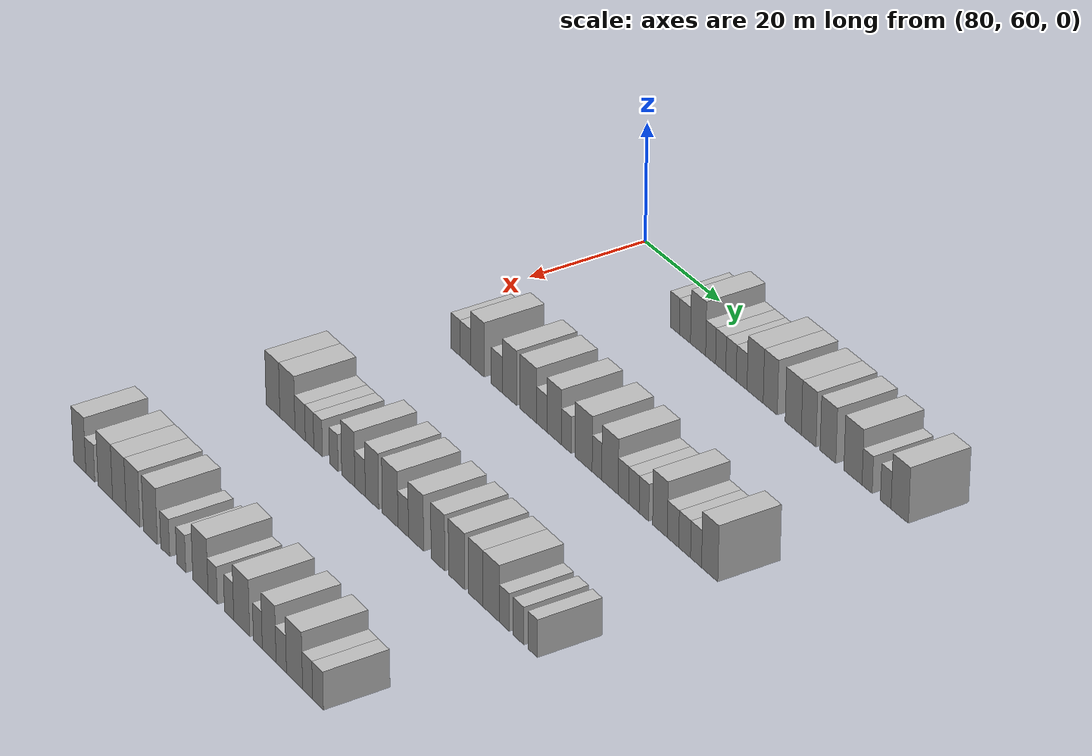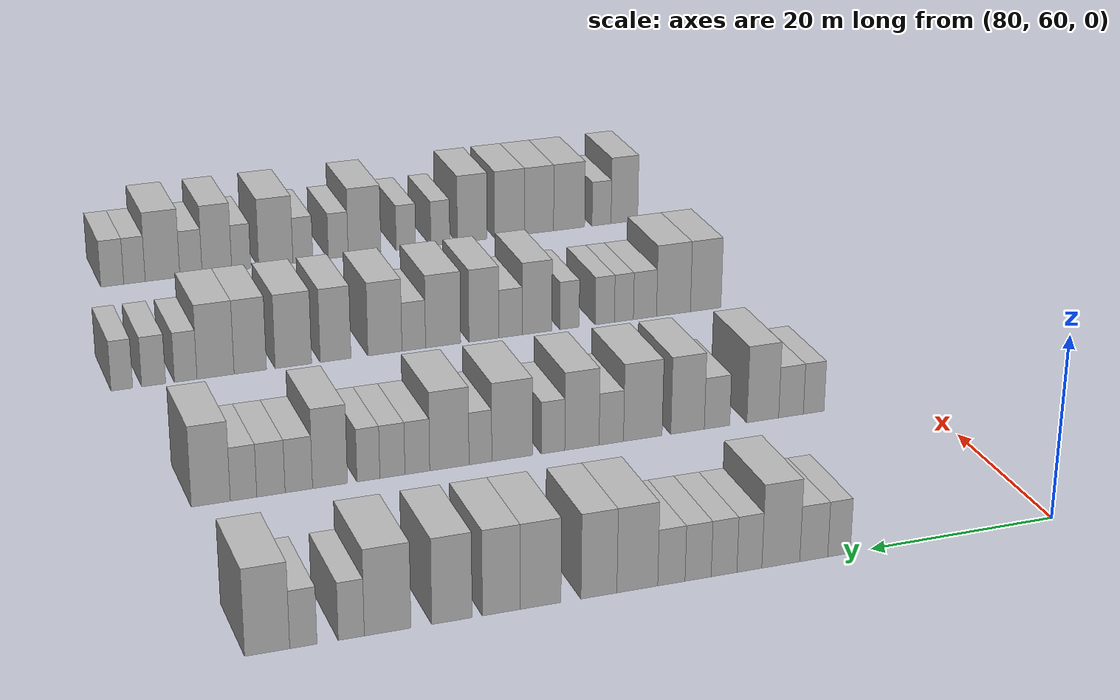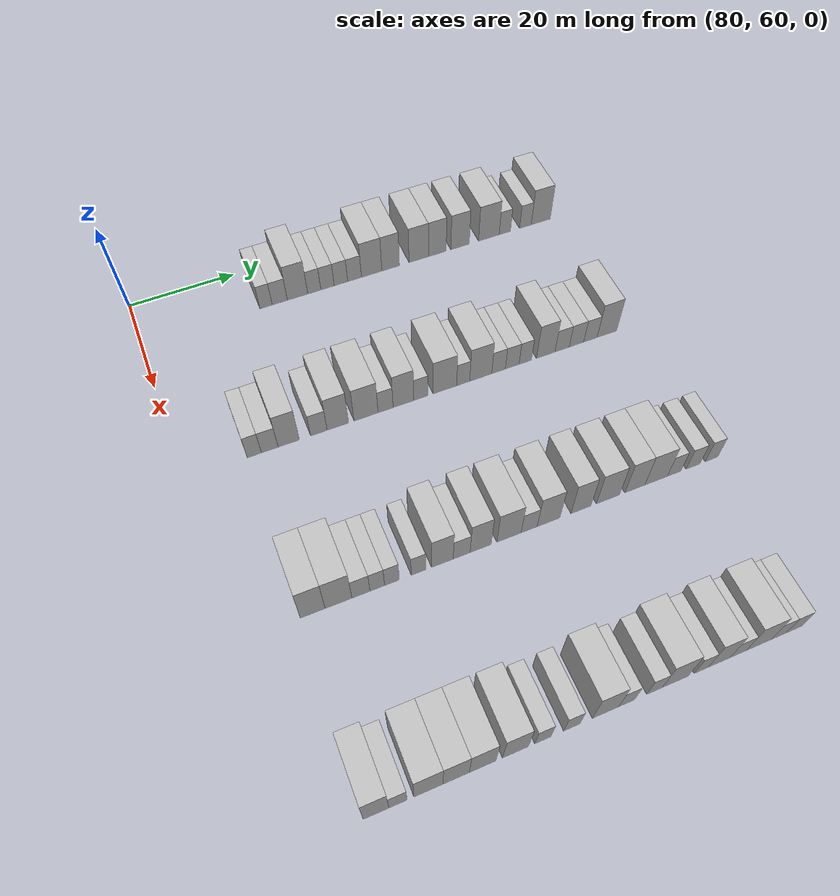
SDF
<sdf version="1.6">
 <world name="default">
  <model name="building_597">
   <static>1</static>
   <pose>85.0000 83.4966 0 0.000000 0.000000 0.000000</pose>
   <link name="link">
    <pose>0 0 3.00 0 0 0</pose>
    <collision name="collision"><geometry><box><size>10.0000 2.4100 6.0000</size></box></geometry></collision>
    <visual name="visual">
     <cast_shadows>0</cast_shadows>
     <geometry><box><size>10.0000 2.4100 6.0000</size></box></geometry>
     <material>
      <script>
       <uri>model://HANNAS_wall/materials/scripts</uri>
       <uri>model://HANNAS_wall/materials/textures</uri>
       <name>vrc/HANNAS_wall</name>
      </script>
     </material>
    </visual>
   </link>
  </model>
  <model name="building_598">
   <static>1</static>
   <pose>85.0000 86.1893 0 0.000000 0.000000 0.000000</pose>
   <link name="link">
    <pose>0 0 3.00 0 0 0</pose>
    <collision name="collision"><geometry><box><size>10.0000 2.9754 6.0000</size></box></geometry></collision>
    <visual name="visual">
     <cast_shadows>0</cast_shadows>
     <geometry><box><size>10.0000 2.9754 6.0000</size></box></geometry>
     <material>
      <script>
       <uri>model://HANNAS_wall/materials/scripts</uri>
       <uri>model://HANNAS_wall/materials/textures</uri>
       <name>vrc/HANNAS_wall</name>
      </script>
     </material>
    </visual>
   </link>
  </model>
  <model name="building_599">
   <static>1</static>
   <pose>85.0000 89.6778 0 0.000000 0.000000 0.000000</pose>
   <link name="link">
    <pose>0 0 4.50 0 0 0</pose>
    <collision name="collision"><geometry><box><size>10.0000 4.0016 9.0000</size></box></geometry></collision>
    <visual name="visual">
     <cast_shadows>0</cast_shadows>
     <geometry><box><size>10.0000 4.0016 9.0000</size></box></geometry>
     <material>
      <script>
       <uri>model://HANNAS_wall/materials/scripts</uri>
       <uri>model://HANNAS_wall/materials/textures</uri>
       <name>vrc/HANNAS_wall</name>
      </script>
     </material>
    </visual>
   </link>
  </model>
  <model name="building_600">
   <static>1</static>
   <pose>85.0000 92.9816 0 0.000000 0.000000 0.000000</pose>
   <link name="link">
    <pose>0 0 3.00 0 0 0</pose>
    <collision name="collision"><geometry><box><size>10.0000 2.6060 6.0000</size></box></geometry></collision>
    <visual name="visual">
     <cast_shadows>0</cast_shadows>
     <geometry><box><size>10.0000 2.6060 6.0000</size></box></geometry>
     <material>
      <script>
       <uri>model://HANNAS_wall/materials/scripts</uri>
       <uri>model://HANNAS_wall/materials/textures</uri>
       <name>vrc/HANNAS_wall</name>
      </script>
     </material>
    </visual>
   </link>
  </model>
  <model name="building_601">
   <static>1</static>
   <pose>85.0000 95.6217 0 0.000000 0.000000 0.000000</pose>
   <link name="link">
    <pose>0 0 3.00 0 0 0</pose>
    <collision name="collision"><geometry><box><size>10.0000 2.6742 6.0000</size></box></geometry></collision>
    <visual name="visual">
     <cast_shadows>0</cast_shadows>
     <geometry><box><size>10.0000 2.6742 6.0000</size></box></geometry>
     <material>
      <script>
       <uri>model://HANNAS_wall/materials/scripts</uri>
       <uri>model://HANNAS_wall/materials/textures</uri>
       <name>vrc/HANNAS_wall</name>
      </script>
     </material>
    </visual>
   </link>
  </model>
  <model name="building_602">
   <static>1</static>
   <pose>85.0000 98.3094 0 0.000000 0.000000 0.000000</pose>
   <link name="link">
    <pose>0 0 3.00 0 0 0</pose>
    <collision name="collision"><geometry><box><size>10.0000 2.7012 6.0000</size></box></geometry></collision>
    <visual name="visual">
     <cast_shadows>0</cast_shadows>
     <geometry><box><size>10.0000 2.7012 6.0000</size></box></geometry>
     <material>
      <script>
       <uri>model://HANNAS_wall/materials/scripts</uri>
       <uri>model://HANNAS_wall/materials/textures</uri>
       <name>vrc/HANNAS_wall</name>
      </script>
     </material>
    </visual>
   </link>
  </model>
  <model name="building_603">
   <static>1</static>
   <pose>85.0000 101.0605 0 0.000000 0.000000 0.000000</pose>
   <link name="link">
    <pose>0 0 3.00 0 0 0</pose>
    <collision name="collision"><geometry><box><size>10.0000 2.8011 6.0000</size></box></geometry></collision>
    <visual name="visual">
     <cast_shadows>0</cast_shadows>
     <geometry><box><size>10.0000 2.8011 6.0000</size></box></geometry>
     <material>
      <script>
       <uri>model://HANNAS_wall/materials/scripts</uri>
       <uri>model://HANNAS_wall/materials/textures</uri>
       <name>vrc/HANNAS_wall</name>
      </script>
     </material>
    </visual>
   </link>
  </model>
  <model name="building_604">
   <static>1</static>
   <pose>85.0000 104.5413 0 0.000000 0.000000 0.000000</pose>
   <link name="link">
    <pose>0 0 4.50 0 0 0</pose>
    <collision name="collision"><geometry><box><size>10.0000 4.1605 9.0000</size></box></geometry></collision>
    <visual name="visual">
     <cast_shadows>0</cast_shadows>
     <geometry><box><size>10.0000 4.1605 9.0000</size></box></geometry>
     <material>
      <script>
       <uri>model://HANNAS_wall/materials/scripts</uri>
       <uri>model://HANNAS_wall/materials/textures</uri>
       <name>vrc/HANNAS_wall</name>
      </script>
     </material>
    </visual>
   </link>
  </model>
  <model name="building_605">
   <static>1</static>
   <pose>85.0000 108.4311 0 0.000000 0.000000 0.000000</pose>
   <link name="link">
    <pose>0 0 4.50 0 0 0</pose>
    <collision name="collision"><geometry><box><size>10.0000 3.6190 9.0000</size></box></geometry></collision>
    <visual name="visual">
     <cast_shadows>0</cast_shadows>
     <geometry><box><size>10.0000 3.6190 9.0000</size></box></geometry>
     <material>
      <script>
       <uri>model://HANNAS_wall/materials/scripts</uri>
       <uri>model://HANNAS_wall/materials/textures</uri>
       <name>vrc/HANNAS_wall</name>
      </script>
     </material>
    </visual>
   </link>
  </model>
  <model name="building_606">
   <static>1</static>
   <pose>85.0000 114.2674 0 0.000000 0.000000 0.000000</pose>
   <link name="link">
    <pose>0 0 4.50 0 0 0</pose>
    <collision name="collision"><geometry><box><size>10.0000 4.0536 9.0000</size></box></geometry></collision>
    <visual name="visual">
     <cast_shadows>0</cast_shadows>
     <geometry><box><size>10.0000 4.0536 9.0000</size></box></geometry>
     <material>
      <script>
       <uri>model://HANNAS_wall/materials/scripts</uri>
       <uri>model://HANNAS_wall/materials/textures</uri>
       <name>vrc/HANNAS_wall</name>
      </script>
     </material>
    </visual>
   </link>
  </model>
  <model name="building_607">
   <static>1</static>
   <pose>85.0000 118.1545 0 0.000000 0.000000 0.000000</pose>
   <link name="link">
    <pose>0 0 4.50 0 0 0</pose>
    <collision name="collision"><geometry><box><size>10.0000 3.7206 9.0000</size></box></geometry></collision>
    <visual name="visual">
     <cast_shadows>0</cast_shadows>
     <geometry><box><size>10.0000 3.7206 9.0000</size></box></geometry>
     <material>
      <script>
       <uri>model://HANNAS_wall/materials/scripts</uri>
       <uri>model://HANNAS_wall/materials/textures</uri>
       <name>vrc/HANNAS_wall</name>
      </script>
     </material>
    </visual>
   </link>
  </model>
  <model name="building_608">
   <static>1</static>
   <pose>85.0000 122.9770 0 0.000000 0.000000 0.000000</pose>
   <link name="link">
    <pose>0 0 4.50 0 0 0</pose>
    <collision name="collision"><geometry><box><size>10.0000 3.9243 9.0000</size></box></geometry></collision>
    <visual name="visual">
     <cast_shadows>0</cast_shadows>
     <geometry><box><size>10.0000 3.9243 9.0000</size></box></geometry>
     <material>
      <script>
       <uri>model://HANNAS_wall/materials/scripts</uri>
       <uri>model://HANNAS_wall/materials/textures</uri>
       <name>vrc/HANNAS_wall</name>
      </script>
     </material>
    </visual>
   </link>
  </model>
  <model name="building_609">
   <static>1</static>
   <pose>85.0000 129.1701 0 0.000000 0.000000 0.000000</pose>
   <link name="link">
    <pose>0 0 4.50 0 0 0</pose>
    <collision name="collision"><geometry><box><size>10.0000 4.4619 9.0000</size></box></geometry></collision>
    <visual name="visual">
     <cast_shadows>0</cast_shadows>
     <geometry><box><size>10.0000 4.4619 9.0000</size></box></geometry>
     <material>
      <script>
       <uri>model://HANNAS_wall/materials/scripts</uri>
       <uri>model://HANNAS_wall/materials/textures</uri>
       <name>vrc/HANNAS_wall</name>
      </script>
     </material>
    </visual>
   </link>
  </model>
  <model name="building_610">
   <static>1</static>
   <pose>85.0000 132.6388 0 0.000000 0.000000 0.000000</pose>
   <link name="link">
    <pose>0 0 3.00 0 0 0</pose>
    <collision name="collision"><geometry><box><size>10.0000 2.4756 6.0000</size></box></geometry></collision>
    <visual name="visual">
     <cast_shadows>0</cast_shadows>
     <geometry><box><size>10.0000 2.4756 6.0000</size></box></geometry>
     <material>
      <script>
       <uri>model://HANNAS_wall/materials/scripts</uri>
       <uri>model://HANNAS_wall/materials/textures</uri>
       <name>vrc/HANNAS_wall</name>
      </script>
     </material>
    </visual>
   </link>
  </model>
  <model name="building_611">
   <static>1</static>
   <pose>85.0000 137.1572 0 0.000000 0.000000 0.000000</pose>
   <link name="link">
    <pose>0 0 3.00 0 0 0</pose>
    <collision name="collision"><geometry><box><size>10.0000 2.5611 6.0000</size></box></geometry></collision>
    <visual name="visual">
     <cast_shadows>0</cast_shadows>
     <geometry><box><size>10.0000 2.5611 6.0000</size></box></geometry>
     <material>
      <script>
       <uri>model://HANNAS_wall/materials/scripts</uri>
       <uri>model://HANNAS_wall/materials/textures</uri>
       <name>vrc/HANNAS_wall</name>
      </script>
     </material>
    </visual>
   </link>
  </model>
  <model name="building_612">
   <static>1</static>
   <pose>85.0000 140.5400 0 0.000000 0.000000 0.000000</pose>
   <link name="link">
    <pose>0 0 4.50 0 0 0</pose>
    <collision name="collision"><geometry><box><size>10.0000 4.2045 9.0000</size></box></geometry></collision>
    <visual name="visual">
     <cast_shadows>0</cast_shadows>
     <geometry><box><size>10.0000 4.2045 9.0000</size></box></geometry>
     <material>
      <script>
       <uri>model://HANNAS_wall/materials/scripts</uri>
       <uri>model://HANNAS_wall/materials/textures</uri>
       <name>vrc/HANNAS_wall</name>
      </script>
     </material>
    </visual>
   </link>
  </model>
  <model name="building_826">
   <static>1</static>
   <pose>115.0000 72.3078 0 0.000000 0.000000 0.000000</pose>
   <link name="link">
    <pose>0 0 3.00 0 0 0</pose>
    <collision name="collision"><geometry><box><size>10.0000 2.4722 6.0000</size></box></geometry></collision>
    <visual name="visual">
     <cast_shadows>0</cast_shadows>
     <geometry><box><size>10.0000 2.4722 6.0000</size></box></geometry>
     <material>
      <script>
       <uri>model://HANNAS_wall/materials/scripts</uri>
       <uri>model://HANNAS_wall/materials/textures</uri>
       <name>vrc/HANNAS_wall</name>
      </script>
     </material>
    </visual>
   </link>
  </model>
  <model name="building_827">
   <static>1</static>
   <pose>115.0000 75.0088 0 0.000000 0.000000 0.000000</pose>
   <link name="link">
    <pose>0 0 3.00 0 0 0</pose>
    <collision name="collision"><geometry><box><size>10.0000 2.9298 6.0000</size></box></geometry></collision>
    <visual name="visual">
     <cast_shadows>0</cast_shadows>
     <geometry><box><size>10.0000 2.9298 6.0000</size></box></geometry>
     <material>
      <script>
       <uri>model://HANNAS_wall/materials/scripts</uri>
       <uri>model://HANNAS_wall/materials/textures</uri>
       <name>vrc/HANNAS_wall</name>
      </script>
     </material>
    </visual>
   </link>
  </model>
  <model name="building_828">
   <static>1</static>
   <pose>115.0000 78.3494 0 0.000000 0.000000 0.000000</pose>
   <link name="link">
    <pose>0 0 4.50 0 0 0</pose>
    <collision name="collision"><geometry><box><size>10.0000 3.7514 9.0000</size></box></geometry></collision>
    <visual name="visual">
     <cast_shadows>0</cast_shadows>
     <geometry><box><size>10.0000 3.7514 9.0000</size></box></geometry>
     <material>
      <script>
       <uri>model://HANNAS_wall/materials/scripts</uri>
       <uri>model://HANNAS_wall/materials/textures</uri>
       <name>vrc/HANNAS_wall</name>
      </script>
     </material>
    </visual>
   </link>
  </model>
  <model name="building_829">
   <static>1</static>
   <pose>115.0000 83.7113 0 0.000000 0.000000 0.000000</pose>
   <link name="link">
    <pose>0 0 3.00 0 0 0</pose>
    <collision name="collision"><geometry><box><size>10.0000 2.9724 6.0000</size></box></geometry></collision>
    <visual name="visual">
     <cast_shadows>0</cast_shadows>
     <geometry><box><size>10.0000 2.9724 6.0000</size></box></geometry>
     <material>
      <script>
       <uri>model://HANNAS_wall/materials/scripts</uri>
       <uri>model://HANNAS_wall/materials/textures</uri>
       <name>vrc/HANNAS_wall</name>
      </script>
     </material>
    </visual>
   </link>
  </model>
  <model name="building_830">
   <static>1</static>
   <pose>115.0000 87.1357 0 0.000000 0.000000 0.000000</pose>
   <link name="link">
    <pose>0 0 4.50 0 0 0</pose>
    <collision name="collision"><geometry><box><size>10.0000 3.8764 9.0000</size></box></geometry></collision>
    <visual name="visual">
     <cast_shadows>0</cast_shadows>
     <geometry><box><size>10.0000 3.8764 9.0000</size></box></geometry>
     <material>
      <script>
       <uri>model://HANNAS_wall/materials/scripts</uri>
       <uri>model://HANNAS_wall/materials/textures</uri>
       <name>vrc/HANNAS_wall</name>
      </script>
     </material>
    </visual>
   </link>
  </model>
  <model name="building_831">
   <static>1</static>
   <pose>115.0000 92.2844 0 0.000000 0.000000 0.000000</pose>
   <link name="link">
    <pose>0 0 4.50 0 0 0</pose>
    <collision name="collision"><geometry><box><size>10.0000 4.4210 9.0000</size></box></geometry></collision>
    <visual name="visual">
     <cast_shadows>0</cast_shadows>
     <geometry><box><size>10.0000 4.4210 9.0000</size></box></geometry>
     <material>
      <script>
       <uri>model://HANNAS_wall/materials/scripts</uri>
       <uri>model://HANNAS_wall/materials/textures</uri>
       <name>vrc/HANNAS_wall</name>
      </script>
     </material>
    </visual>
   </link>
  </model>
  <model name="building_832">
   <static>1</static>
   <pose>115.0000 95.8815 0 0.000000 0.000000 0.000000</pose>
   <link name="link">
    <pose>0 0 3.00 0 0 0</pose>
    <collision name="collision"><geometry><box><size>10.0000 2.7733 6.0000</size></box></geometry></collision>
    <visual name="visual">
     <cast_shadows>0</cast_shadows>
     <geometry><box><size>10.0000 2.7733 6.0000</size></box></geometry>
     <material>
      <script>
       <uri>model://HANNAS_wall/materials/scripts</uri>
       <uri>model://HANNAS_wall/materials/textures</uri>
       <name>vrc/HANNAS_wall</name>
      </script>
     </material>
    </visual>
   </link>
  </model>
  <model name="building_833">
   <static>1</static>
   <pose>115.0000 99.2023 0 0.000000 0.000000 0.000000</pose>
   <link name="link">
    <pose>0 0 4.50 0 0 0</pose>
    <collision name="collision"><geometry><box><size>10.0000 3.8685 9.0000</size></box></geometry></collision>
    <visual name="visual">
     <cast_shadows>0</cast_shadows>
     <geometry><box><size>10.0000 3.8685 9.0000</size></box></geometry>
     <material>
      <script>
       <uri>model://HANNAS_wall/materials/scripts</uri>
       <uri>model://HANNAS_wall/materials/textures</uri>
       <name>vrc/HANNAS_wall</name>
      </script>
     </material>
    </visual>
   </link>
  </model>
  <model name="building_834">
   <static>1</static>
   <pose>115.0000 102.4510 0 0.000000 0.000000 0.000000</pose>
   <link name="link">
    <pose>0 0 3.00 0 0 0</pose>
    <collision name="collision"><geometry><box><size>10.0000 2.6289 6.0000</size></box></geometry></collision>
    <visual name="visual">
     <cast_shadows>0</cast_shadows>
     <geometry><box><size>10.0000 2.6289 6.0000</size></box></geometry>
     <material>
      <script>
       <uri>model://HANNAS_wall/materials/scripts</uri>
       <uri>model://HANNAS_wall/materials/textures</uri>
       <name>vrc/HANNAS_wall</name>
      </script>
     </material>
    </visual>
   </link>
  </model>
  <model name="building_835">
   <static>1</static>
   <pose>115.0000 107.0101 0 0.000000 0.000000 0.000000</pose>
   <link name="link">
    <pose>0 0 4.50 0 0 0</pose>
    <collision name="collision"><geometry><box><size>10.0000 4.4893 9.0000</size></box></geometry></collision>
    <visual name="visual">
     <cast_shadows>0</cast_shadows>
     <geometry><box><size>10.0000 4.4893 9.0000</size></box></geometry>
     <material>
      <script>
       <uri>model://HANNAS_wall/materials/scripts</uri>
       <uri>model://HANNAS_wall/materials/textures</uri>
       <name>vrc/HANNAS_wall</name>
      </script>
     </material>
    </visual>
   </link>
  </model>
  <model name="building_836">
   <static>1</static>
   <pose>115.0000 110.5089 0 0.000000 0.000000 0.000000</pose>
   <link name="link">
    <pose>0 0 3.00 0 0 0</pose>
    <collision name="collision"><geometry><box><size>10.0000 2.5083 6.0000</size></box></geometry></collision>
    <visual name="visual">
     <cast_shadows>0</cast_shadows>
     <geometry><box><size>10.0000 2.5083 6.0000</size></box></geometry>
     <material>
      <script>
       <uri>model://HANNAS_wall/materials/scripts</uri>
       <uri>model://HANNAS_wall/materials/textures</uri>
       <name>vrc/HANNAS_wall</name>
      </script>
     </material>
    </visual>
   </link>
  </model>
  <model name="building_837">
   <static>1</static>
   <pose>115.0000 113.9041 0 0.000000 0.000000 0.000000</pose>
   <link name="link">
    <pose>0 0 4.50 0 0 0</pose>
    <collision name="collision"><geometry><box><size>10.0000 4.2821 9.0000</size></box></geometry></collision>
    <visual name="visual">
     <cast_shadows>0</cast_shadows>
     <geometry><box><size>10.0000 4.2821 9.0000</size></box></geometry>
     <material>
      <script>
       <uri>model://HANNAS_wall/materials/scripts</uri>
       <uri>model://HANNAS_wall/materials/textures</uri>
       <name>vrc/HANNAS_wall</name>
      </script>
     </material>
    </visual>
   </link>
  </model>
  <model name="building_838">
   <static>1</static>
   <pose>115.0000 117.3872 0 0.000000 0.000000 0.000000</pose>
   <link name="link">
    <pose>0 0 3.00 0 0 0</pose>
    <collision name="collision"><geometry><box><size>10.0000 2.6840 6.0000</size></box></geometry></collision>
    <visual name="visual">
     <cast_shadows>0</cast_shadows>
     <geometry><box><size>10.0000 2.6840 6.0000</size></box></geometry>
     <material>
      <script>
       <uri>model://HANNAS_wall/materials/scripts</uri>
       <uri>model://HANNAS_wall/materials/textures</uri>
       <name>vrc/HANNAS_wall</name>
      </script>
     </material>
    </visual>
   </link>
  </model>
  <model name="building_839">
   <static>1</static>
   <pose>115.0000 120.0788 0 0.000000 0.000000 0.000000</pose>
   <link name="link">
    <pose>0 0 3.00 0 0 0</pose>
    <collision name="collision"><geometry><box><size>10.0000 2.6993 6.0000</size></box></geometry></collision>
    <visual name="visual">
     <cast_shadows>0</cast_shadows>
     <geometry><box><size>10.0000 2.6993 6.0000</size></box></geometry>
     <material>
      <script>
       <uri>model://HANNAS_wall/materials/scripts</uri>
       <uri>model://HANNAS_wall/materials/textures</uri>
       <name>vrc/HANNAS_wall</name>
      </script>
     </material>
    </visual>
   </link>
  </model>
  <model name="building_840">
   <static>1</static>
   <pose>115.0000 122.6558 0 0.000000 0.000000 0.000000</pose>
   <link name="link">
    <pose>0 0 3.00 0 0 0</pose>
    <collision name="collision"><geometry><box><size>10.0000 2.4546 6.0000</size></box></geometry></collision>
    <visual name="visual">
     <cast_shadows>0</cast_shadows>
     <geometry><box><size>10.0000 2.4546 6.0000</size></box></geometry>
     <material>
      <script>
       <uri>model://HANNAS_wall/materials/scripts</uri>
       <uri>model://HANNAS_wall/materials/textures</uri>
       <name>vrc/HANNAS_wall</name>
      </script>
     </material>
    </visual>
   </link>
  </model>
  <model name="building_841">
   <static>1</static>
   <pose>115.0000 126.7380 0 0.000000 0.000000 0.000000</pose>
   <link name="link">
    <pose>0 0 4.50 0 0 0</pose>
    <collision name="collision"><geometry><box><size>10.0000 3.7097 9.0000</size></box></geometry></collision>
    <visual name="visual">
     <cast_shadows>0</cast_shadows>
     <geometry><box><size>10.0000 3.7097 9.0000</size></box></geometry>
     <material>
      <script>
       <uri>model://HANNAS_wall/materials/scripts</uri>
       <uri>model://HANNAS_wall/materials/textures</uri>
       <name>vrc/HANNAS_wall</name>
      </script>
     </material>
    </visual>
   </link>
  </model>
  <model name="building_842">
   <static>1</static>
   <pose>115.0000 130.0363 0 0.000000 0.000000 0.000000</pose>
   <link name="link">
    <pose>0 0 3.00 0 0 0</pose>
    <collision name="collision"><geometry><box><size>10.0000 2.8869 6.0000</size></box></geometry></collision>
    <visual name="visual">
     <cast_shadows>0</cast_shadows>
     <geometry><box><size>10.0000 2.8869 6.0000</size></box></geometry>
     <material>
      <script>
       <uri>model://HANNAS_wall/materials/scripts</uri>
       <uri>model://HANNAS_wall/materials/textures</uri>
       <name>vrc/HANNAS_wall</name>
      </script>
     </material>
    </visual>
   </link>
  </model>
  <model name="building_843">
   <static>1</static>
   <pose>115.0000 132.9573 0 0.000000 0.000000 0.000000</pose>
   <link name="link">
    <pose>0 0 3.00 0 0 0</pose>
    <collision name="collision"><geometry><box><size>10.0000 2.9551 6.0000</size></box></geometry></collision>
    <visual name="visual">
     <cast_shadows>0</cast_shadows>
     <geometry><box><size>10.0000 2.9551 6.0000</size></box></geometry>
     <material>
      <script>
       <uri>model://HANNAS_wall/materials/scripts</uri>
       <uri>model://HANNAS_wall/materials/textures</uri>
       <name>vrc/HANNAS_wall</name>
      </script>
     </material>
    </visual>
   </link>
  </model>
  <model name="building_844">
   <static>1</static>
   <pose>115.0000 135.8101 0 0.000000 0.000000 0.000000</pose>
   <link name="link">
    <pose>0 0 3.00 0 0 0</pose>
    <collision name="collision"><geometry><box><size>10.0000 2.7505 6.0000</size></box></geometry></collision>
    <visual name="visual">
     <cast_shadows>0</cast_shadows>
     <geometry><box><size>10.0000 2.7505 6.0000</size></box></geometry>
     <material>
      <script>
       <uri>model://HANNAS_wall/materials/scripts</uri>
       <uri>model://HANNAS_wall/materials/textures</uri>
       <name>vrc/HANNAS_wall</name>
      </script>
     </material>
    </visual>
   </link>
  </model>
  <model name="building_845">
   <static>1</static>
   <pose>115.0000 139.2016 0 0.000000 0.000000 0.000000</pose>
   <link name="link">
    <pose>0 0 4.50 0 0 0</pose>
    <collision name="collision"><geometry><box><size>10.0000 4.0326 9.0000</size></box></geometry></collision>
    <visual name="visual">
     <cast_shadows>0</cast_shadows>
     <geometry><box><size>10.0000 4.0326 9.0000</size></box></geometry>
     <material>
      <script>
       <uri>model://HANNAS_wall/materials/scripts</uri>
       <uri>model://HANNAS_wall/materials/textures</uri>
       <name>vrc/HANNAS_wall</name>
      </script>
     </material>
    </visual>
   </link>
  </model>
  <model name="building_1049">
   <static>1</static>
   <pose>145.0000 72.5468 0 0.000000 0.000000 0.000000</pose>
   <link name="link">
    <pose>0 0 4.50 0 0 0</pose>
    <collision name="collision"><geometry><box><size>10.0000 3.9404 9.0000</size></box></geometry></collision>
    <visual name="visual">
     <cast_shadows>0</cast_shadows>
     <geometry><box><size>10.0000 3.9404 9.0000</size></box></geometry>
     <material>
      <script>
       <uri>model://HANNAS_wall/materials/scripts</uri>
       <uri>model://HANNAS_wall/materials/textures</uri>
       <name>vrc/HANNAS_wall</name>
      </script>
     </material>
    </visual>
   </link>
  </model>
  <model name="building_1050">
   <static>1</static>
   <pose>145.0000 76.6857 0 0.000000 0.000000 0.000000</pose>
   <link name="link">
    <pose>0 0 4.50 0 0 0</pose>
    <collision name="collision"><geometry><box><size>10.0000 4.3375 9.0000</size></box></geometry></collision>
    <visual name="visual">
     <cast_shadows>0</cast_shadows>
     <geometry><box><size>10.0000 4.3375 9.0000</size></box></geometry>
     <material>
      <script>
       <uri>model://HANNAS_wall/materials/scripts</uri>
       <uri>model://HANNAS_wall/materials/textures</uri>
       <name>vrc/HANNAS_wall</name>
      </script>
     </material>
    </visual>
   </link>
  </model>
  <model name="building_1051">
   <static>1</static>
   <pose>145.0000 80.3227 0 0.000000 0.000000 0.000000</pose>
   <link name="link">
    <pose>0 0 3.00 0 0 0</pose>
    <collision name="collision"><geometry><box><size>10.0000 2.9367 6.0000</size></box></geometry></collision>
    <visual name="visual">
     <cast_shadows>0</cast_shadows>
     <geometry><box><size>10.0000 2.9367 6.0000</size></box></geometry>
     <material>
      <script>
       <uri>model://HANNAS_wall/materials/scripts</uri>
       <uri>model://HANNAS_wall/materials/textures</uri>
       <name>vrc/HANNAS_wall</name>
      </script>
     </material>
    </visual>
   </link>
  </model>
  <model name="building_1052">
   <static>1</static>
   <pose>145.0000 82.9936 0 0.000000 0.000000 0.000000</pose>
   <link name="link">
    <pose>0 0 3.00 0 0 0</pose>
    <collision name="collision"><geometry><box><size>10.0000 2.4051 6.0000</size></box></geometry></collision>
    <visual name="visual">
     <cast_shadows>0</cast_shadows>
     <geometry><box><size>10.0000 2.4051 6.0000</size></box></geometry>
     <material>
      <script>
       <uri>model://HANNAS_wall/materials/scripts</uri>
       <uri>model://HANNAS_wall/materials/textures</uri>
       <name>vrc/HANNAS_wall</name>
      </script>
     </material>
    </visual>
   </link>
  </model>
  <model name="building_1053">
   <static>1</static>
   <pose>145.0000 85.4049 0 0.000000 0.000000 0.000000</pose>
   <link name="link">
    <pose>0 0 3.00 0 0 0</pose>
    <collision name="collision"><geometry><box><size>10.0000 2.4174 6.0000</size></box></geometry></collision>
    <visual name="visual">
     <cast_shadows>0</cast_shadows>
     <geometry><box><size>10.0000 2.4174 6.0000</size></box></geometry>
     <material>
      <script>
       <uri>model://HANNAS_wall/materials/scripts</uri>
       <uri>model://HANNAS_wall/materials/textures</uri>
       <name>vrc/HANNAS_wall</name>
      </script>
     </material>
    </visual>
   </link>
  </model>
  <model name="building_1054">
   <static>1</static>
   <pose>145.0000 89.8155 0 0.000000 0.000000 0.000000</pose>
   <link name="link">
    <pose>0 0 3.00 0 0 0</pose>
    <collision name="collision"><geometry><box><size>10.0000 2.4038 6.0000</size></box></geometry></collision>
    <visual name="visual">
     <cast_shadows>0</cast_shadows>
     <geometry><box><size>10.0000 2.4038 6.0000</size></box></geometry>
     <material>
      <script>
       <uri>model://HANNAS_wall/materials/scripts</uri>
       <uri>model://HANNAS_wall/materials/textures</uri>
       <name>vrc/HANNAS_wall</name>
      </script>
     </material>
    </visual>
   </link>
  </model>
  <model name="building_1055">
   <static>1</static>
   <pose>145.0000 93.8507 0 0.000000 0.000000 0.000000</pose>
   <link name="link">
    <pose>0 0 4.50 0 0 0</pose>
    <collision name="collision"><geometry><box><size>10.0000 3.6666 9.0000</size></box></geometry></collision>
    <visual name="visual">
     <cast_shadows>0</cast_shadows>
     <geometry><box><size>10.0000 3.6666 9.0000</size></box></geometry>
     <material>
      <script>
       <uri>model://HANNAS_wall/materials/scripts</uri>
       <uri>model://HANNAS_wall/materials/textures</uri>
       <name>vrc/HANNAS_wall</name>
      </script>
     </material>
    </visual>
   </link>
  </model>
  <model name="building_1056">
   <static>1</static>
   <pose>145.0000 97.1250 0 0.000000 0.000000 0.000000</pose>
   <link name="link">
    <pose>0 0 3.00 0 0 0</pose>
    <collision name="collision"><geometry><box><size>10.0000 2.8822 6.0000</size></box></geometry></collision>
    <visual name="visual">
     <cast_shadows>0</cast_shadows>
     <geometry><box><size>10.0000 2.8822 6.0000</size></box></geometry>
     <material>
      <script>
       <uri>model://HANNAS_wall/materials/scripts</uri>
       <uri>model://HANNAS_wall/materials/textures</uri>
       <name>vrc/HANNAS_wall</name>
      </script>
     </material>
    </visual>
   </link>
  </model>
  <model name="building_1057">
   <static>1</static>
   <pose>145.0000 100.3914 0 0.000000 0.000000 0.000000</pose>
   <link name="link">
    <pose>0 0 4.50 0 0 0</pose>
    <collision name="collision"><geometry><box><size>10.0000 3.6505 9.0000</size></box></geometry></collision>
    <visual name="visual">
     <cast_shadows>0</cast_shadows>
     <geometry><box><size>10.0000 3.6505 9.0000</size></box></geometry>
     <material>
      <script>
       <uri>model://HANNAS_wall/materials/scripts</uri>
       <uri>model://HANNAS_wall/materials/textures</uri>
       <name>vrc/HANNAS_wall</name>
      </script>
     </material>
    </visual>
   </link>
  </model>
  <model name="building_1058">
   <static>1</static>
   <pose>145.0000 105.3400 0 0.000000 0.000000 0.000000</pose>
   <link name="link">
    <pose>0 0 4.50 0 0 0</pose>
    <collision name="collision"><geometry><box><size>10.0000 4.2468 9.0000</size></box></geometry></collision>
    <visual name="visual">
     <cast_shadows>0</cast_shadows>
     <geometry><box><size>10.0000 4.2468 9.0000</size></box></geometry>
     <material>
      <script>
       <uri>model://HANNAS_wall/materials/scripts</uri>
       <uri>model://HANNAS_wall/materials/textures</uri>
       <name>vrc/HANNAS_wall</name>
      </script>
     </material>
    </visual>
   </link>
  </model>
  <model name="building_1059">
   <static>1</static>
   <pose>145.0000 108.8807 0 0.000000 0.000000 0.000000</pose>
   <link name="link">
    <pose>0 0 3.00 0 0 0</pose>
    <collision name="collision"><geometry><box><size>10.0000 2.8346 6.0000</size></box></geometry></collision>
    <visual name="visual">
     <cast_shadows>0</cast_shadows>
     <geometry><box><size>10.0000 2.8346 6.0000</size></box></geometry>
     <material>
      <script>
       <uri>model://HANNAS_wall/materials/scripts</uri>
       <uri>model://HANNAS_wall/materials/textures</uri>
       <name>vrc/HANNAS_wall</name>
      </script>
     </material>
    </visual>
   </link>
  </model>
  <model name="building_1060">
   <static>1</static>
   <pose>145.0000 112.3312 0 0.000000 0.000000 0.000000</pose>
   <link name="link">
    <pose>0 0 4.50 0 0 0</pose>
    <collision name="collision"><geometry><box><size>10.0000 4.0666 9.0000</size></box></geometry></collision>
    <visual name="visual">
     <cast_shadows>0</cast_shadows>
     <geometry><box><size>10.0000 4.0666 9.0000</size></box></geometry>
     <material>
      <script>
       <uri>model://HANNAS_wall/materials/scripts</uri>
       <uri>model://HANNAS_wall/materials/textures</uri>
       <name>vrc/HANNAS_wall</name>
      </script>
     </material>
    </visual>
   </link>
  </model>
  <model name="building_1061">
   <static>1</static>
   <pose>145.0000 118.1789 0 0.000000 0.000000 0.000000</pose>
   <link name="link">
    <pose>0 0 4.50 0 0 0</pose>
    <collision name="collision"><geometry><box><size>10.0000 3.6287 9.0000</size></box></geometry></collision>
    <visual name="visual">
     <cast_shadows>0</cast_shadows>
     <geometry><box><size>10.0000 3.6287 9.0000</size></box></geometry>
     <material>
      <script>
       <uri>model://HANNAS_wall/materials/scripts</uri>
       <uri>model://HANNAS_wall/materials/textures</uri>
       <name>vrc/HANNAS_wall</name>
      </script>
     </material>
    </visual>
   </link>
  </model>
  <model name="building_1062">
   <static>1</static>
   <pose>145.0000 123.1220 0 0.000000 0.000000 0.000000</pose>
   <link name="link">
    <pose>0 0 4.50 0 0 0</pose>
    <collision name="collision"><geometry><box><size>10.0000 4.2576 9.0000</size></box></geometry></collision>
    <visual name="visual">
     <cast_shadows>0</cast_shadows>
     <geometry><box><size>10.0000 4.2576 9.0000</size></box></geometry>
     <material>
      <script>
       <uri>model://HANNAS_wall/materials/scripts</uri>
       <uri>model://HANNAS_wall/materials/textures</uri>
       <name>vrc/HANNAS_wall</name>
      </script>
     </material>
    </visual>
   </link>
  </model>
  <model name="building_1063">
   <static>1</static>
   <pose>145.0000 128.1206 0 0.000000 0.000000 0.000000</pose>
   <link name="link">
    <pose>0 0 4.50 0 0 0</pose>
    <collision name="collision"><geometry><box><size>10.0000 3.7396 9.0000</size></box></geometry></collision>
    <visual name="visual">
     <cast_shadows>0</cast_shadows>
     <geometry><box><size>10.0000 3.7396 9.0000</size></box></geometry>
     <material>
      <script>
       <uri>model://HANNAS_wall/materials/scripts</uri>
       <uri>model://HANNAS_wall/materials/textures</uri>
       <name>vrc/HANNAS_wall</name>
      </script>
     </material>
    </visual>
   </link>
  </model>
  <model name="building_1064">
   <static>1</static>
   <pose>145.0000 132.1134 0 0.000000 0.000000 0.000000</pose>
   <link name="link">
    <pose>0 0 4.50 0 0 0</pose>
    <collision name="collision"><geometry><box><size>10.0000 4.2459 9.0000</size></box></geometry></collision>
    <visual name="visual">
     <cast_shadows>0</cast_shadows>
     <geometry><box><size>10.0000 4.2459 9.0000</size></box></geometry>
     <material>
      <script>
       <uri>model://HANNAS_wall/materials/scripts</uri>
       <uri>model://HANNAS_wall/materials/textures</uri>
       <name>vrc/HANNAS_wall</name>
      </script>
     </material>
    </visual>
   </link>
  </model>
  <model name="building_1065">
   <static>1</static>
   <pose>145.0000 135.5210 0 0.000000 0.000000 0.000000</pose>
   <link name="link">
    <pose>0 0 3.00 0 0 0</pose>
    <collision name="collision"><geometry><box><size>10.0000 2.5692 6.0000</size></box></geometry></collision>
    <visual name="visual">
     <cast_shadows>0</cast_shadows>
     <geometry><box><size>10.0000 2.5692 6.0000</size></box></geometry>
     <material>
      <script>
       <uri>model://HANNAS_wall/materials/scripts</uri>
       <uri>model://HANNAS_wall/materials/textures</uri>
       <name>vrc/HANNAS_wall</name>
      </script>
     </material>
    </visual>
   </link>
  </model>
  <model name="building_1066">
   <static>1</static>
   <pose>145.0000 139.1594 0 0.000000 0.000000 0.000000</pose>
   <link name="link">
    <pose>0 0 3.00 0 0 0</pose>
    <collision name="collision"><geometry><box><size>10.0000 2.7076 6.0000</size></box></geometry></collision>
    <visual name="visual">
     <cast_shadows>0</cast_shadows>
     <geometry><box><size>10.0000 2.7076 6.0000</size></box></geometry>
     <material>
      <script>
       <uri>model://HANNAS_wall/materials/scripts</uri>
       <uri>model://HANNAS_wall/materials/textures</uri>
       <name>vrc/HANNAS_wall</name>
      </script>
     </material>
    </visual>
   </link>
  </model>
  <model name="building_1067">
   <static>1</static>
   <pose>145.0000 142.7318 0 0.000000 0.000000 0.000000</pose>
   <link name="link">
    <pose>0 0 3.00 0 0 0</pose>
    <collision name="collision"><geometry><box><size>10.0000 2.4372 6.0000</size></box></geometry></collision>
    <visual name="visual">
     <cast_shadows>0</cast_shadows>
     <geometry><box><size>10.0000 2.4372 6.0000</size></box></geometry>
     <material>
      <script>
       <uri>model://HANNAS_wall/materials/scripts</uri>
       <uri>model://HANNAS_wall/materials/textures</uri>
       <name>vrc/HANNAS_wall</name>
      </script>
     </material>
    </visual>
   </link>
  </model>
  <model name="building_1282">
   <static>1</static>
   <pose>175.0000 71.4741 0 0.000000 0.000000 0.000000</pose>
   <link name="link">
    <pose>0 0 4.50 0 0 0</pose>
    <collision name="collision"><geometry><box><size>10.0000 3.6970 9.0000</size></box></geometry></collision>
    <visual name="visual">
     <cast_shadows>0</cast_shadows>
     <geometry><box><size>10.0000 3.6970 9.0000</size></box></geometry>
     <material>
      <script>
       <uri>model://HANNAS_wall/materials/scripts</uri>
       <uri>model://HANNAS_wall/materials/textures</uri>
       <name>vrc/HANNAS_wall</name>
      </script>
     </material>
    </visual>
   </link>
  </model>
  <model name="building_1283">
   <static>1</static>
   <pose>175.0000 74.6391 0 0.000000 0.000000 0.000000</pose>
   <link name="link">
    <pose>0 0 3.00 0 0 0</pose>
    <collision name="collision"><geometry><box><size>10.0000 2.6330 6.0000</size></box></geometry></collision>
    <visual name="visual">
     <cast_shadows>0</cast_shadows>
     <geometry><box><size>10.0000 2.6330 6.0000</size></box></geometry>
     <material>
      <script>
       <uri>model://HANNAS_wall/materials/scripts</uri>
       <uri>model://HANNAS_wall/materials/textures</uri>
       <name>vrc/HANNAS_wall</name>
      </script>
     </material>
    </visual>
   </link>
  </model>
  <model name="building_1284">
   <static>1</static>
   <pose>175.0000 79.0885 0 0.000000 0.000000 0.000000</pose>
   <link name="link">
    <pose>0 0 4.50 0 0 0</pose>
    <collision name="collision"><geometry><box><size>10.0000 4.2660 9.0000</size></box></geometry></collision>
    <visual name="visual">
     <cast_shadows>0</cast_shadows>
     <geometry><box><size>10.0000 4.2660 9.0000</size></box></geometry>
     <material>
      <script>
       <uri>model://HANNAS_wall/materials/scripts</uri>
       <uri>model://HANNAS_wall/materials/textures</uri>
       <name>vrc/HANNAS_wall</name>
      </script>
     </material>
    </visual>
   </link>
  </model>
  <model name="building_1285">
   <static>1</static>
   <pose>175.0000 83.1962 0 0.000000 0.000000 0.000000</pose>
   <link name="link">
    <pose>0 0 4.50 0 0 0</pose>
    <collision name="collision"><geometry><box><size>10.0000 3.9493 9.0000</size></box></geometry></collision>
    <visual name="visual">
     <cast_shadows>0</cast_shadows>
     <geometry><box><size>10.0000 3.9493 9.0000</size></box></geometry>
     <material>
      <script>
       <uri>model://HANNAS_wall/materials/scripts</uri>
       <uri>model://HANNAS_wall/materials/textures</uri>
       <name>vrc/HANNAS_wall</name>
      </script>
     </material>
    </visual>
   </link>
  </model>
  <model name="building_1286">
   <static>1</static>
   <pose>175.0000 87.1913 0 0.000000 0.000000 0.000000</pose>
   <link name="link">
    <pose>0 0 4.50 0 0 0</pose>
    <collision name="collision"><geometry><box><size>10.0000 4.0409 9.0000</size></box></geometry></collision>
    <visual name="visual">
     <cast_shadows>0</cast_shadows>
     <geometry><box><size>10.0000 4.0409 9.0000</size></box></geometry>
     <material>
      <script>
       <uri>model://HANNAS_wall/materials/scripts</uri>
       <uri>model://HANNAS_wall/materials/textures</uri>
       <name>vrc/HANNAS_wall</name>
      </script>
     </material>
    </visual>
   </link>
  </model>
  <model name="building_1287">
   <static>1</static>
   <pose>175.0000 92.2102 0 0.000000 0.000000 0.000000</pose>
   <link name="link">
    <pose>0 0 4.50 0 0 0</pose>
    <collision name="collision"><geometry><box><size>10.0000 3.9969 9.0000</size></box></geometry></collision>
    <visual name="visual">
     <cast_shadows>0</cast_shadows>
     <geometry><box><size>10.0000 3.9969 9.0000</size></box></geometry>
     <material>
      <script>
       <uri>model://HANNAS_wall/materials/scripts</uri>
       <uri>model://HANNAS_wall/materials/textures</uri>
       <name>vrc/HANNAS_wall</name>
      </script>
     </material>
    </visual>
   </link>
  </model>
  <model name="building_1288">
   <static>1</static>
   <pose>175.0000 96.4720 0 0.000000 0.000000 0.000000</pose>
   <link name="link">
    <pose>0 0 3.00 0 0 0</pose>
    <collision name="collision"><geometry><box><size>10.0000 2.5268 6.0000</size></box></geometry></collision>
    <visual name="visual">
     <cast_shadows>0</cast_shadows>
     <geometry><box><size>10.0000 2.5268 6.0000</size></box></geometry>
     <material>
      <script>
       <uri>model://HANNAS_wall/materials/scripts</uri>
       <uri>model://HANNAS_wall/materials/textures</uri>
       <name>vrc/HANNAS_wall</name>
      </script>
     </material>
    </visual>
   </link>
  </model>
  <model name="building_1289">
   <static>1</static>
   <pose>175.0000 101.0203 0 0.000000 0.000000 0.000000</pose>
   <link name="link">
    <pose>0 0 3.00 0 0 0</pose>
    <collision name="collision"><geometry><box><size>10.0000 2.5699 6.0000</size></box></geometry></collision>
    <visual name="visual">
     <cast_shadows>0</cast_shadows>
     <geometry><box><size>10.0000 2.5699 6.0000</size></box></geometry>
     <material>
      <script>
       <uri>model://HANNAS_wall/materials/scripts</uri>
       <uri>model://HANNAS_wall/materials/textures</uri>
       <name>vrc/HANNAS_wall</name>
      </script>
     </material>
    </visual>
   </link>
  </model>
  <model name="building_1290">
   <static>1</static>
   <pose>175.0000 106.4391 0 0.000000 0.000000 0.000000</pose>
   <link name="link">
    <pose>0 0 4.50 0 0 0</pose>
    <collision name="collision"><geometry><box><size>10.0000 4.2677 9.0000</size></box></geometry></collision>
    <visual name="visual">
     <cast_shadows>0</cast_shadows>
     <geometry><box><size>10.0000 4.2677 9.0000</size></box></geometry>
     <material>
      <script>
       <uri>model://HANNAS_wall/materials/scripts</uri>
       <uri>model://HANNAS_wall/materials/textures</uri>
       <name>vrc/HANNAS_wall</name>
      </script>
     </material>
    </visual>
   </link>
  </model>
  <model name="building_1291">
   <static>1</static>
   <pose>175.0000 109.8583 0 0.000000 0.000000 0.000000</pose>
   <link name="link">
    <pose>0 0 3.00 0 0 0</pose>
    <collision name="collision"><geometry><box><size>10.0000 2.5706 6.0000</size></box></geometry></collision>
    <visual name="visual">
     <cast_shadows>0</cast_shadows>
     <geometry><box><size>10.0000 2.5706 6.0000</size></box></geometry>
     <material>
      <script>
       <uri>model://HANNAS_wall/materials/scripts</uri>
       <uri>model://HANNAS_wall/materials/textures</uri>
       <name>vrc/HANNAS_wall</name>
      </script>
     </material>
    </visual>
   </link>
  </model>
  <model name="building_1292">
   <static>1</static>
   <pose>175.0000 114.4202 0 0.000000 0.000000 0.000000</pose>
   <link name="link">
    <pose>0 0 3.00 0 0 0</pose>
    <collision name="collision"><geometry><box><size>10.0000 2.5533 6.0000</size></box></geometry></collision>
    <visual name="visual">
     <cast_shadows>0</cast_shadows>
     <geometry><box><size>10.0000 2.5533 6.0000</size></box></geometry>
     <material>
      <script>
       <uri>model://HANNAS_wall/materials/scripts</uri>
       <uri>model://HANNAS_wall/materials/textures</uri>
       <name>vrc/HANNAS_wall</name>
      </script>
     </material>
    </visual>
   </link>
  </model>
  <model name="building_1293">
   <static>1</static>
   <pose>175.0000 117.8839 0 0.000000 0.000000 0.000000</pose>
   <link name="link">
    <pose>0 0 4.50 0 0 0</pose>
    <collision name="collision"><geometry><box><size>10.0000 4.3740 9.0000</size></box></geometry></collision>
    <visual name="visual">
     <cast_shadows>0</cast_shadows>
     <geometry><box><size>10.0000 4.3740 9.0000</size></box></geometry>
     <material>
      <script>
       <uri>model://HANNAS_wall/materials/scripts</uri>
       <uri>model://HANNAS_wall/materials/textures</uri>
       <name>vrc/HANNAS_wall</name>
      </script>
     </material>
    </visual>
   </link>
  </model>
  <model name="building_1294">
   <static>1</static>
   <pose>175.0000 122.2780 0 0.000000 0.000000 0.000000</pose>
   <link name="link">
    <pose>0 0 3.00 0 0 0</pose>
    <collision name="collision"><geometry><box><size>10.0000 2.4143 6.0000</size></box></geometry></collision>
    <visual name="visual">
     <cast_shadows>0</cast_shadows>
     <geometry><box><size>10.0000 2.4143 6.0000</size></box></geometry>
     <material>
      <script>
       <uri>model://HANNAS_wall/materials/scripts</uri>
       <uri>model://HANNAS_wall/materials/textures</uri>
       <name>vrc/HANNAS_wall</name>
      </script>
     </material>
    </visual>
   </link>
  </model>
  <model name="building_1295">
   <static>1</static>
   <pose>175.0000 125.3480 0 0.000000 0.000000 0.000000</pose>
   <link name="link">
    <pose>0 0 4.50 0 0 0</pose>
    <collision name="collision"><geometry><box><size>10.0000 3.7258 9.0000</size></box></geometry></collision>
    <visual name="visual">
     <cast_shadows>0</cast_shadows>
     <geometry><box><size>10.0000 3.7258 9.0000</size></box></geometry>
     <material>
      <script>
       <uri>model://HANNAS_wall/materials/scripts</uri>
       <uri>model://HANNAS_wall/materials/textures</uri>
       <name>vrc/HANNAS_wall</name>
      </script>
     </material>
    </visual>
   </link>
  </model>
  <model name="building_1296">
   <static>1</static>
   <pose>175.0000 128.6047 0 0.000000 0.000000 0.000000</pose>
   <link name="link">
    <pose>0 0 3.00 0 0 0</pose>
    <collision name="collision"><geometry><box><size>10.0000 2.7875 6.0000</size></box></geometry></collision>
    <visual name="visual">
     <cast_shadows>0</cast_shadows>
     <geometry><box><size>10.0000 2.7875 6.0000</size></box></geometry>
     <material>
      <script>
       <uri>model://HANNAS_wall/materials/scripts</uri>
       <uri>model://HANNAS_wall/materials/textures</uri>
       <name>vrc/HANNAS_wall</name>
      </script>
     </material>
    </visual>
   </link>
  </model>
  <model name="building_1297">
   <static>1</static>
   <pose>175.0000 132.1500 0 0.000000 0.000000 0.000000</pose>
   <link name="link">
    <pose>0 0 4.50 0 0 0</pose>
    <collision name="collision"><geometry><box><size>10.0000 4.3032 9.0000</size></box></geometry></collision>
    <visual name="visual">
     <cast_shadows>0</cast_shadows>
     <geometry><box><size>10.0000 4.3032 9.0000</size></box></geometry>
     <material>
      <script>
       <uri>model://HANNAS_wall/materials/scripts</uri>
       <uri>model://HANNAS_wall/materials/textures</uri>
       <name>vrc/HANNAS_wall</name>
      </script>
     </material>
    </visual>
   </link>
  </model>
  <model name="building_1298">
   <static>1</static>
   <pose>175.0000 135.6289 0 0.000000 0.000000 0.000000</pose>
   <link name="link">
    <pose>0 0 3.00 0 0 0</pose>
    <collision name="collision"><geometry><box><size>10.0000 2.6545 6.0000</size></box></geometry></collision>
    <visual name="visual">
     <cast_shadows>0</cast_shadows>
     <geometry><box><size>10.0000 2.6545 6.0000</size></box></geometry>
     <material>
      <script>
       <uri>model://HANNAS_wall/materials/scripts</uri>
       <uri>model://HANNAS_wall/materials/textures</uri>
       <name>vrc/HANNAS_wall</name>
      </script>
     </material>
    </visual>
   </link>
  </model>
  <model name="building_1299">
   <static>1</static>
   <pose>175.0000 138.3720 0 0.000000 0.000000 0.000000</pose>
   <link name="link">
    <pose>0 0 3.00 0 0 0</pose>
    <collision name="collision"><geometry><box><size>10.0000 2.8317 6.0000</size></box></geometry></collision>
    <visual name="visual">
     <cast_shadows>0</cast_shadows>
     <geometry><box><size>10.0000 2.8317 6.0000</size></box></geometry>
     <material>
      <script>
       <uri>model://HANNAS_wall/materials/scripts</uri>
       <uri>model://HANNAS_wall/materials/textures</uri>
       <name>vrc/HANNAS_wall</name>
      </script>
     </material>
    </visual>
   </link>
  </model>
 </world>
</sdf>
